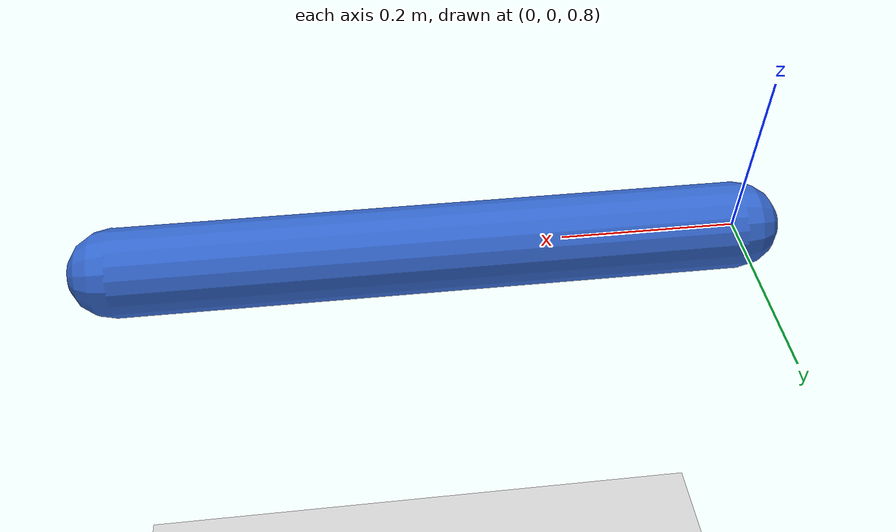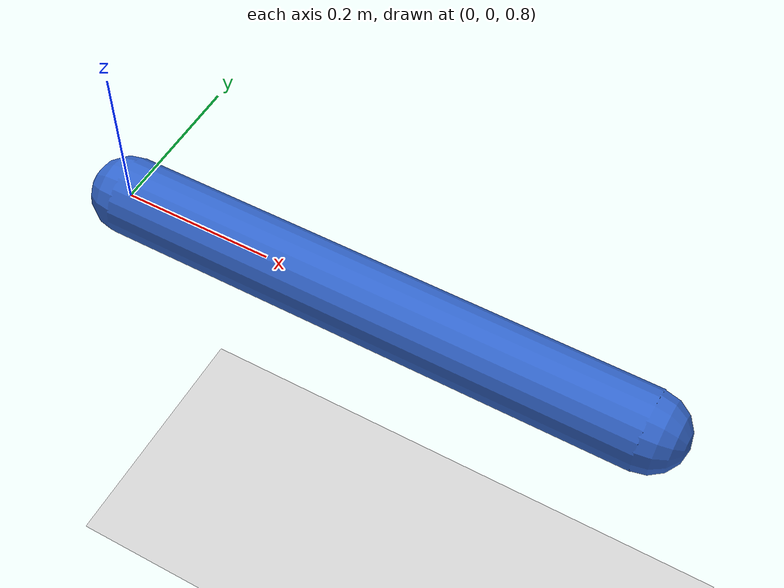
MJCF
<mujoco model="day3_actuated_joint">
    <compiler angle="degree"/>

    <option
        timestep="0.002"
        gravity="0 0 -9.81"
    />

    <worldbody>

            <light
                name="top_light"
                pos="0 0 4"
                dir="0 0 -1"
            />

            <geom
                name="floor"
                type="plane"
                size="2 2 0.1"
                rgba="0.8 0.8 0.8 1"
            />

            <!-- 单关节机械臂 -->
            <body
                name="arm"
                pos="0 0 0.8"
            >
                <joint
                    name="hinge_joint"
                    type="hinge"
                    axis="0 0 1"
                    limited="true"
                    range="-180 180"
                    damping="0.1"
                />
                <geom
                    name="arm_link"
                    type="capsule"
                    fromto="0 0 0  0.7 0 0"
                    size="0.05"
                    mass="1"
                    rgba="0.2 0.4 0.8 1"
                />
                <!-- 机械臂末端 -->
                <site
                    name="tip"
                    pos="0.7 0 0"
                    size="0.04"
                    rgba="1 0 0 1"
                />
            </body>

    </worldbody>

    <!-- Actuator                                  -->

    <actuator>

        <motor
            name="joint_motor"
            joint="hinge_joint"
            gear="1"
            ctrllimited="true"
            ctrlrange="-3 3"
        />

    </actuator>
</mujoco>
